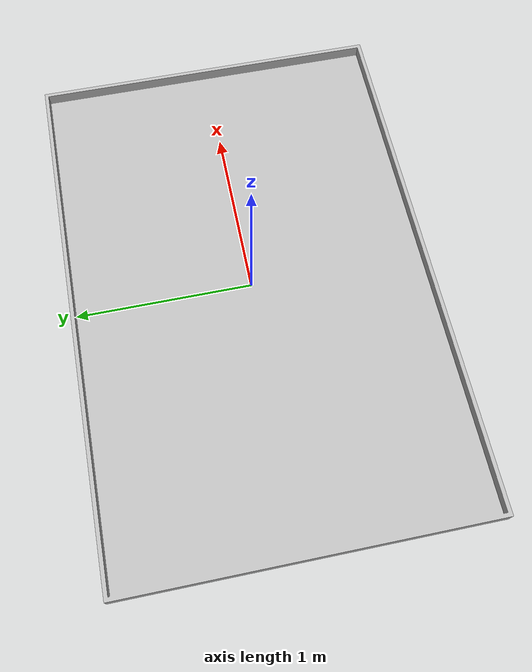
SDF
<?xml version='1.0'?>
<sdf version='1.7'>
<model name='playground'>
  <pose>0 0 0 0 0 0</pose>
  <static>true</static>
  <link name='link'>
    <inertial>
      <mass>1</mass>
      <inertia>
        <ixx>0</ixx>
        <ixy>0</ixy>
        <ixz>0</ixz>
        <iyy>0</iyy>
        <iyz>0</iyz>
        <izz>0</izz>
      </inertia>
      <pose>0 0 0 0 0 0</pose>
    </inertial>
    <collision name='collision'>
      <geometry>
        <mesh>
          <uri>model://playground/meshes/table_2024.obj</uri>
          <scale>0.001 0.001 0.001</scale>
        </mesh>
      </geometry>
      <max_contacts>10</max_contacts>
      <surface>
        <contact>
          <ode />
        </contact>
        <bounce />
        <friction>
          <torsional>
            <ode />
          </torsional>
          <ode />
        </friction>
      </surface>
    </collision>
    <visual name='visual'>
      <geometry>
        <mesh>
          <uri>model://playground/meshes/table_2024.obj</uri>
          <scale>0.001 0.001 0.001</scale>
        </mesh>
      </geometry>
    </visual>
  </link>
</model>
</sdf>
